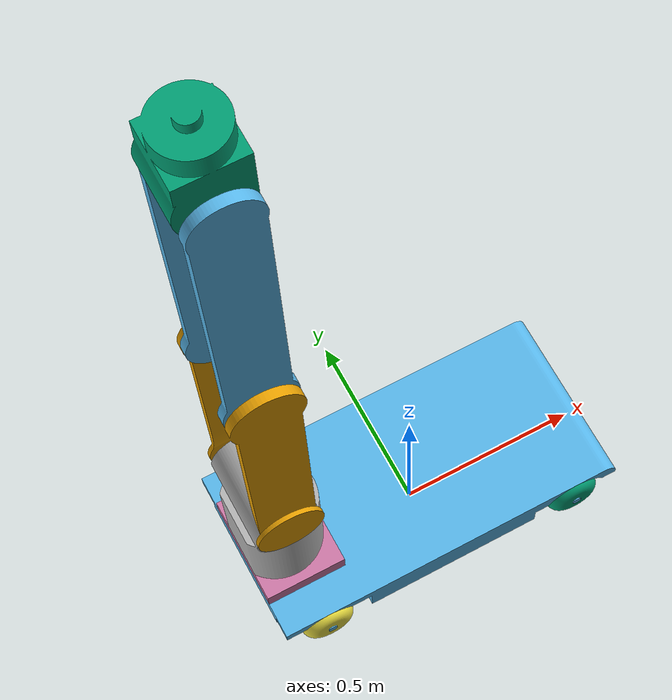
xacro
<?xml version="1.0" ?>

<robot name="mobile_manipulator" xmlns:xacro="http://ros.org/wiki/xacro">
    <!-- Uncomment to disable the physics engine! -->
    <gazebo>
        <static>true</static>
    </gazebo>

    <xacro:include filename="$(find custom_robot_sim)/urdf/common_macros.xacro" />
    <xacro:include filename="$(find custom_robot_sim)/urdf/mobile_manipulator.gazebo.xacro" />

    <link name="mobile_base_footprint"/>

        <joint name="mobile_base_joint" type="fixed">
            <parent link="mobile_base_footprint"/>
            <child link="mobile_base_link" />
            <origin xyz="0 0 0" rpy="0 0 0"/>
        </joint>

    <!-- ADD LINK AND JOINTS HERE -->

    <link name="mobile_base_link">
        <visual>
            <origin xyz="0 0 0" rpy="0 0 0"/>
            <geometry>
                <!-- ADD VISUAL GEOMETRY HERE -->
                <mesh filename="$(find custom_robot_sim)/meshes/Base.stl" scale="0.0005 0.0005 0.0005"/>
            </geometry>
        </visual>
        <collision>
            <origin xyz="0 0 0" rpy="0 0 0"/>
            <geometry>
                <!-- ADD COLLISION GEOMETRY HERE -->
                <mesh filename="$(find custom_robot_sim)/meshes/Base.stl" scale="0.0005 0.0005 0.0005"/>
                </geometry>
        </collision>
        <xacro:inertial_box length="1" width="0.5" height="0.1" density="3000">
            <origin xyz="0.2 0 0.085" rpy="0 0 0"/>
        </xacro:inertial_box>

    </link>

    <joint type="continuous" name="wheel_front_right_joint">
        <origin xyz="0.375 -0.187 0.087" rpy="${pi/2} 0 0"/>
        <child link="wheel_front_right_link"/>
        <parent link="mobile_base_link"/>
        <axis xyz="0 0 1" rpy="0 0 0"/>
        <limit effort="100" velocity="100"/>
        <dynamics damping="0.7" friction="1.0"/>
    </joint>

    <link name="wheel_front_right_link">
        <visual>
            <origin xyz="0 0 0" rpy="0 0 0"/>
            <geometry>
                <!-- ADD VISUAL GEOMETRY HERE -->
                <mesh filename="$(find custom_robot_sim)/meshes/Wheel.stl" scale="0.0005 0.0005 0.0005"/>
            </geometry>
        </visual>
        <collision>
            <origin xyz="0 0 0" rpy="0 0 0"/>
            <geometry>
                <!-- ADD COLLISION GEOMETRY HERE -->
                <mesh filename="$(find custom_robot_sim)/meshes/Wheel.stl" scale="0.0005 0.0005 0.0005"/>
                </geometry>
        </collision>
        <xacro:inertial_cylinder radius="0.075" length="0.075" density="600">
            <origin xyz="0 0 0.035" rpy="0 0 0"/>
        </xacro:inertial_cylinder>

    </link>

    <joint type="continuous" name="wheel_back_right_joint">
        <origin xyz="-0.375 -0.187 0.087" rpy="${pi/2} 0 0"/>
        <child link="wheel_back_right_link"/>
        <parent link="mobile_base_link"/>
        <axis xyz="0 0 1" rpy="0 0 0"/>
        <limit effort="100" velocity="100"/>
        <dynamics damping="0.7" friction="1.0"/>
    </joint>

    <link name="wheel_back_right_link">
        <visual>
            <origin xyz="0 0 0" rpy="0 0 0"/>
            <geometry>
                <!-- ADD VISUAL GEOMETRY HERE -->
                <mesh filename="$(find custom_robot_sim)/meshes/Wheel.stl" scale="0.0005 0.0005 0.0005"/>
            </geometry>
        </visual>
        <collision>
            <origin xyz="0 0 0" rpy="0 0 0"/>
            <geometry>
                <!-- ADD COLLISION GEOMETRY HERE -->
                <mesh filename="$(find custom_robot_sim)/meshes/Wheel.stl" scale="0.0005 0.0005 0.0005"/>
                </geometry>
        </collision>
        <xacro:inertial_cylinder radius="0.075" length="0.075" density="600">
            <origin xyz="0 0 0.035" rpy="0 0 0"/>
        </xacro:inertial_cylinder>

    </link>

    <joint type="continuous" name="wheel_back_left_joint">
        <origin xyz="-0.375 0.265 0.087" rpy="${pi/2} 0 0"/>
        <child link="wheel_back_left_link"/>
        <parent link="mobile_base_link"/>
        <axis xyz="0 0 1" rpy="0 0 0"/>
        <limit effort="100" velocity="100"/>
        <dynamics damping="0.7" friction="1.0"/>
    </joint>

    <link name="wheel_back_left_link">
        <visual>
            <origin xyz="0 0 0" rpy="0 0 0"/>
            <geometry>
                <!-- ADD VISUAL GEOMETRY HERE -->
                <mesh filename="$(find custom_robot_sim)/meshes/Wheel.stl" scale="0.0005 0.0005 0.0005"/>
            </geometry>
        </visual>
        <collision>
            <origin xyz="0 0 0" rpy="0 0 0"/>
            <geometry>
                <!-- ADD COLLISION GEOMETRY HERE -->
                <mesh filename="$(find custom_robot_sim)/meshes/Wheel.stl" scale="0.0005 0.0005 0.0005" />
                </geometry>
        </collision>
        <xacro:inertial_cylinder radius="0.075" length="0.075" density="600">
                <origin xyz="0 0 0.035" rpy="0 0 0"/>
        </xacro:inertial_cylinder>

    </link>

    <joint type="continuous" name="wheel_front_left_joint">
        <origin xyz="0.375 0.265 0.087" rpy="${pi/2} 0 0"/>
        <child link="wheel_front_left_link"/>
        <parent link="mobile_base_link"/>
        <axis xyz="0 0 1" rpy="0 0 0"/>
        <limit effort="100" velocity="100"/>
        <dynamics damping="0.7" friction="1.0"/>
    </joint>

    <link name="wheel_front_left_link">
        <visual>
            <origin xyz="0 0 0" rpy="0 0 0"/>
            <geometry>
                <!-- ADD VISUAL GEOMETRY HERE -->
                <mesh filename="$(find custom_robot_sim)/meshes/Wheel.stl" scale="0.0005 0.0005 0.0005"/>
            </geometry>
        </visual>
        <collision>
            <origin xyz="0 0 0" rpy="0 0 0"/>
            <geometry>
                <!-- ADD COLLISION GEOMETRY HERE -->
                <mesh filename="$(find custom_robot_sim)/meshes/Wheel.stl" scale="0.0005 0.0005 0.0005" />
                </geometry>
        </collision>
        <xacro:inertial_cylinder radius="0.075" length="0.075" density="600">
                <origin xyz="0 0 0.035" rpy="0 0 0"/>
        </xacro:inertial_cylinder>

    </link>

    <joint name="arm_base_joint" type="fixed">
        <parent link="mobile_base_link"/>
        <child link="arm_base_link" />
        <origin xyz="-0.400 0 0.175" rpy="0 0 -${pi/2}"/>
    </joint>

    <link name="arm_base_link">
        <visual>
            <origin xyz="0 0 0" rpy="0 0 0"/>
            <geometry>
                <!-- ADD VISUAL GEOMETRY HERE -->
                <mesh filename="$(find custom_robot_sim)/meshes/Arm_base.stl" scale="0.0005 0.0005 0.0005"/>
            </geometry>
        </visual>
        <collision>
            <origin xyz="0 0.025 0.0" rpy="0 0 -${pi}"/>
            <geometry>
                <!-- ADD COLLISION GEOMETRY HERE -->
                <mesh filename="$(find custom_robot_sim)/meshes/Arm_base.stl" scale="0.0005 0.0005 0.0005"/>
                </geometry>
        </collision>
        <xacro:inertial_box length="0.3" width="0.225" height="0.05" density="600">
            <origin xyz="0 0.025 0.0" rpy="0 0 -${pi}"/>
        </xacro:inertial_box>

    </link>

    <joint type="continuous" name="arm_base_help_joint">
        <origin xyz="0 0 0.25" rpy="0 0 0"/>
        <child link="arm_base_help_link"/>
        <parent link="arm_base_link"/>
        <axis xyz="0 0 1" rpy="0 0 0"/>
        <limit effort="100" velocity="100"/>
        <dynamics damping="0.7" friction="1.0"/>
    </joint>

    <link name="arm_base_help_link">
        <visual>
            <origin xyz="0 0 0" rpy="0 0 0"/>
            <geometry>
                <!-- ADD VISUAL GEOMETRY HERE -->
                <mesh filename="$(find custom_robot_sim)/meshes/Arm_base_help.stl" scale="0.0005 0.0005 0.0005"/>
            </geometry>
        </visual>
        <collision>
            <origin xyz="0 0 0.0" rpy="0 0 0"/>
            <geometry>
                <!-- ADD COLLISION GEOMETRY HERE -->
                <mesh filename="$(find custom_robot_sim)/meshes/Arm_base_help.stl" scale="0.0005 0.0005 0.0005" />
                </geometry>
        </collision>
        <xacro:inertial_cylinder radius="${0.250/2}" length="0.33" density="600">
                <origin xyz="0 0 0" rpy="0 0 0"/>
        </xacro:inertial_cylinder>

    </link>

    <joint type="revolute" name="arm_link_1_joint">
        <origin xyz="-0.004 0.005 0.165" rpy="${pi/2} 0 ${pi/2}"/>
        <child link="arm_link_1"/>
        <parent link="arm_base_help_link"/>
        <axis xyz="0 0 1" rpy="0 0 0"/>
        <limit effort="100" velocity="100" lower="-${pi/2}" upper="${pi/2}"/>
        <dynamics damping="0.7" friction="1.0"/>
    </joint>

    <link name="arm_link_1">
        <visual>
            <origin xyz="0 0 0" rpy="0 0 0"/>
            <geometry>
                <!-- ADD VISUAL GEOMETRY HERE -->
                <mesh filename="$(find custom_robot_sim)/meshes/Arm_link_1.stl" scale="0.0005 0.0005 0.0005"/>
            </geometry>
        </visual>
        <collision>
            <origin xyz="0 0 0" rpy="0 0 0"/>
            <geometry>
                <!-- ADD COLLISION GEOMETRY HERE -->
                <mesh filename="$(find custom_robot_sim)/meshes/Arm_link_1.stl" scale="0.0005 0.0005 0.0005"/>
                </geometry>
        </collision>
        <xacro:inertial_box length="0.6" width="0.150" height="0.05" density="600">
            <origin xyz="0 0.35 0" rpy="0 0 ${pi/2}"/>
        </xacro:inertial_box>

    </link>

    <joint type="revolute" name="arm_link_2_joint">
        <origin xyz="-0.005 0.675 0.004" rpy="0 0 -${pi/2}"/>
        <child link="arm_link_2"/>
        <parent link="arm_link_1"/>
        <axis xyz="0 0 1" rpy="0 0 0"/>
        <limit effort="100" velocity="100" lower="-${pi}" upper="${pi}"/>
        <dynamics damping="0.7" friction="1.0"/>
    </joint>

    <link name="arm_link_2">
        <visual>
            <origin xyz="0 0 0" rpy="0 0 0"/>
            <geometry>
                <!-- ADD VISUAL GEOMETRY HERE -->
                <mesh filename="$(find custom_robot_sim)/meshes/Arm_link_2.stl" scale="0.0005 0.0005 0.0005"/>
            </geometry>
        </visual>
        <collision>
            <origin xyz="0 0 0" rpy="0 0 0"/>
            <geometry>
                <!-- ADD COLLISION GEOMETRY HERE -->
                <mesh filename="$(find custom_robot_sim)/meshes/Arm_link_2.stl" scale="0.0005 0.0005 0.0005"/>
                </geometry>
        </collision>
        <xacro:inertial_box length="0.625" width="0.150" height="0.05" density="600">
            <origin xyz="-0.4 0 0" rpy="0 0 0"/>
        </xacro:inertial_box>

    </link>

    <joint type="revolute" name="arm_link_3_joint">
        <origin xyz="-0.80 0 -0.075" rpy="0.0 0.0 ${pi}"/>
        <child link="arm_link_3"/>
        <parent link="arm_link_2"/>
        <axis xyz="0 0 1" rpy="0 0 0"/>
        <limit effort="100" velocity="100" lower="-${pi}" upper="${pi}"/>
        <dynamics damping="0.7" friction="1.0"/>
    </joint>

    <link name="arm_link_3">
        <visual>
            <origin xyz="0 0 0" rpy="0 0 0"/>
            <geometry>
                <!-- ADD VISUAL GEOMETRY HERE -->
                <mesh filename="$(find custom_robot_sim)/meshes/Arm_link_3.stl" scale="0.0005 0.0005 0.0005"/>
            </geometry>
        </visual>
        <collision>
            <origin xyz="0 0 0" rpy="0 0 0"/>
            <geometry>
                <!-- ADD COLLISION GEOMETRY HERE -->
                <mesh filename="$(find custom_robot_sim)/meshes/Arm_link_3.stl" scale="0.0005 0.0005 0.0005"/>
                </geometry>
        </collision>
        <xacro:inertial_box length="0.25" width="0.15" height="0.15" density="600">
            <origin xyz="0 0 0.075" rpy="0 0 0"/>
        </xacro:inertial_box>

    </link>

</robot>
